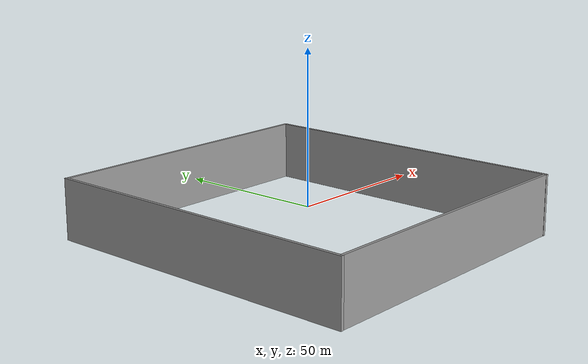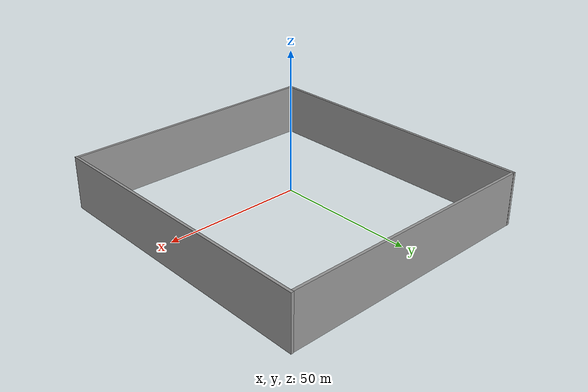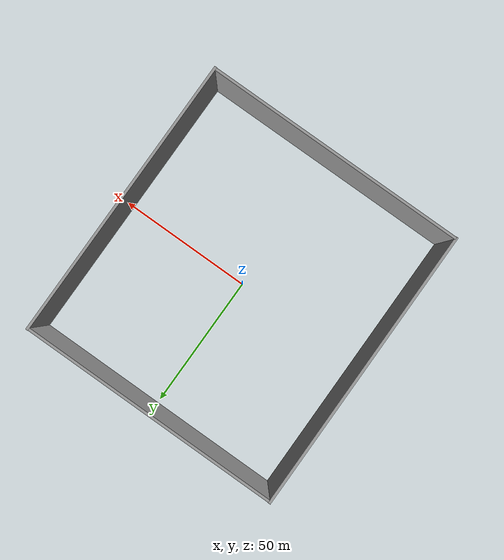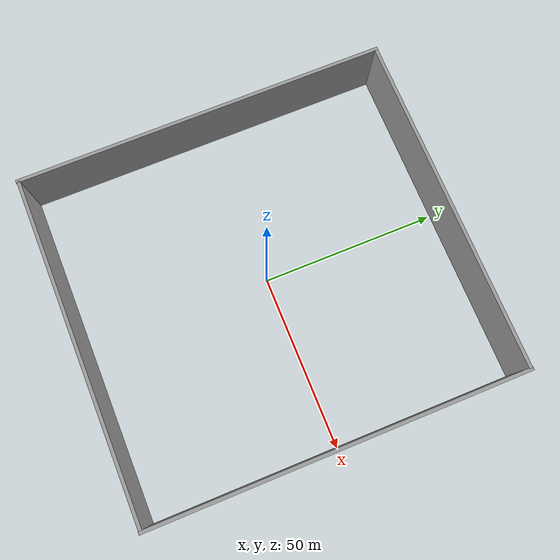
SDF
<?xml version='1.0'?>
<sdf version='1.6'>
  <model name='model'>
    <link name='link_1'>
      <inertial>
        <mass>1</mass>
        <inertia>
          <ixx>0.166667</ixx>
          <ixy>0</ixy>
          <ixz>0</ixz>
          <iyy>0.166667</iyy>
          <iyz>0</iyz>
          <izz>0.166667</izz>
        </inertia>
        <pose frame=''>0 0 0 0 -0 0</pose>
      </inertial>
      <pose frame=''>0.1113 54.3958 0 0 -0 0</pose>
      <gravity>1</gravity>
      <self_collide>0</self_collide>
      <kinematic>0</kinematic>
      <enable_wind>0</enable_wind>
      <visual name='visual'>
        <pose frame=''>0 0 0 0 -0 0</pose>
        <geometry>
          <box>
            <size>100 1 20</size>
          </box>
        </geometry>
        <material>
          <lighting>1</lighting>
          <script>
            <uri>file://media/materials/scripts/gazebo.material</uri>
            <name>Gazebo/Grey</name>
          </script>
          <shader type='vertex'>
            <normal_map>__default__</normal_map>
          </shader>
          <ambient>0.3 0.3 0.3 1</ambient>
          <diffuse>0.7 0.7 0.7 1</diffuse>
          <specular>0.01 0.01 0.01 1</specular>
          <emissive>0 0 0 1</emissive>
        </material>
        <transparency>0</transparency>
        <cast_shadows>1</cast_shadows>
      </visual>
      <collision name='collision'>
        <laser_retro>0</laser_retro>
        <max_contacts>10</max_contacts>
        <pose frame=''>0 0 0 0 -0 0</pose>
        <geometry>
          <box>
            <size>100 1 20</size>
          </box>
        </geometry>
        <surface>
          <friction>
            <ode>
              <mu>1</mu>
              <mu2>1</mu2>
              <fdir1>0 0 0</fdir1>
              <slip1>0</slip1>
              <slip2>0</slip2>
            </ode>
            <torsional>
              <coefficient>1</coefficient>
              <patch_radius>0</patch_radius>
              <surface_radius>0</surface_radius>
              <use_patch_radius>1</use_patch_radius>
              <ode>
                <slip>0</slip>
              </ode>
            </torsional>
          </friction>
          <bounce>
            <restitution_coefficient>0</restitution_coefficient>
            <threshold>1e+06</threshold>
          </bounce>
          <contact>
            <collide_without_contact>0</collide_without_contact>
            <collide_without_contact_bitmask>1</collide_without_contact_bitmask>
            <collide_bitmask>1</collide_bitmask>
            <ode>
              <soft_cfm>0</soft_cfm>
              <soft_erp>0.2</soft_erp>
              <kp>1e+13</kp>
              <kd>1</kd>
              <max_vel>0.01</max_vel>
              <min_depth>0</min_depth>
            </ode>
            <bullet>
              <split_impulse>1</split_impulse>
              <split_impulse_penetration_threshold>-0.01</split_impulse_penetration_threshold>
              <soft_cfm>0</soft_cfm>
              <soft_erp>0.2</soft_erp>
              <kp>1e+13</kp>
              <kd>1</kd>
            </bullet>
          </contact>
        </surface>
      </collision>
    </link>
    <link name='link_1_clone'>
      <inertial>
        <mass>1</mass>
        <inertia>
          <ixx>0.166667</ixx>
          <ixy>0</ixy>
          <ixz>0</ixz>
          <iyy>0.166667</iyy>
          <iyz>0</iyz>
          <izz>0.166667</izz>
        </inertia>
        <pose frame=''>0 0 0 0 -0 0</pose>
      </inertial>
      <pose frame=''>-0.18255 -54.3901 0 0 -0 0</pose>
      <gravity>1</gravity>
      <self_collide>0</self_collide>
      <kinematic>0</kinematic>
      <enable_wind>0</enable_wind>
      <visual name='visual'>
        <pose frame=''>0 0 0 0 -0 0</pose>
        <geometry>
          <box>
            <size>100 1 20</size>
          </box>
        </geometry>
        <material>
          <lighting>1</lighting>
          <script>
            <uri>file://media/materials/scripts/gazebo.material</uri>
            <name>Gazebo/Grey</name>
          </script>
          <shader type='vertex'>
            <normal_map>__default__</normal_map>
          </shader>
          <ambient>0.3 0.3 0.3 1</ambient>
          <diffuse>0.7 0.7 0.7 1</diffuse>
          <specular>0.01 0.01 0.01 1</specular>
          <emissive>0 0 0 1</emissive>
        </material>
        <transparency>0</transparency>
        <cast_shadows>1</cast_shadows>
      </visual>
      <collision name='collision'>
        <laser_retro>0</laser_retro>
        <max_contacts>10</max_contacts>
        <pose frame=''>0 0 0 0 -0 0</pose>
        <geometry>
          <box>
            <size>100 1 20</size>
          </box>
        </geometry>
        <surface>
          <friction>
            <ode>
              <mu>1</mu>
              <mu2>1</mu2>
              <fdir1>0 0 0</fdir1>
              <slip1>0</slip1>
              <slip2>0</slip2>
            </ode>
            <torsional>
              <coefficient>1</coefficient>
              <patch_radius>0</patch_radius>
              <surface_radius>0</surface_radius>
              <use_patch_radius>1</use_patch_radius>
              <ode>
                <slip>0</slip>
              </ode>
            </torsional>
          </friction>
          <bounce>
            <restitution_coefficient>0</restitution_coefficient>
            <threshold>1e+06</threshold>
          </bounce>
          <contact>
            <collide_without_contact>0</collide_without_contact>
            <collide_without_contact_bitmask>1</collide_without_contact_bitmask>
            <collide_bitmask>1</collide_bitmask>
            <ode>
              <soft_cfm>0</soft_cfm>
              <soft_erp>0.2</soft_erp>
              <kp>1e+13</kp>
              <kd>1</kd>
              <max_vel>0.01</max_vel>
              <min_depth>0</min_depth>
            </ode>
            <bullet>
              <split_impulse>1</split_impulse>
              <split_impulse_penetration_threshold>-0.01</split_impulse_penetration_threshold>
              <soft_cfm>0</soft_cfm>
              <soft_erp>0.2</soft_erp>
              <kp>1e+13</kp>
              <kd>1</kd>
            </bullet>
          </contact>
        </surface>
      </collision>
    </link>
    <link name='link_1_clone_0'>
      <inertial>
        <mass>1</mass>
        <inertia>
          <ixx>0.166667</ixx>
          <ixy>0</ixy>
          <ixz>0</ixz>
          <iyy>0.166667</iyy>
          <iyz>0</iyz>
          <izz>0.166667</izz>
        </inertia>
        <pose frame=''>0 0 0 0 -0 0</pose>
      </inertial>
      <pose frame=''>-50.2133 -0.021975 0 0 -0 1.57</pose>
      <gravity>1</gravity>
      <self_collide>0</self_collide>
      <kinematic>0</kinematic>
      <enable_wind>0</enable_wind>
      <visual name='visual'>
        <pose frame=''>0 0 0 0 -0 0</pose>
        <geometry>
          <box>
            <size>110 1 20</size>
          </box>
        </geometry>
        <material>
          <lighting>1</lighting>
          <script>
            <uri>file://media/materials/scripts/gazebo.material</uri>
            <name>Gazebo/Grey</name>
          </script>
          <shader type='vertex'>
            <normal_map>__default__</normal_map>
          </shader>
          <ambient>0.3 0.3 0.3 1</ambient>
          <diffuse>0.7 0.7 0.7 1</diffuse>
          <specular>0.01 0.01 0.01 1</specular>
          <emissive>0 0 0 1</emissive>
        </material>
        <transparency>0</transparency>
        <cast_shadows>1</cast_shadows>
      </visual>
      <collision name='collision'>
        <laser_retro>0</laser_retro>
        <max_contacts>10</max_contacts>
        <pose frame=''>0 0 0 0 -0 0</pose>
        <geometry>
          <box>
            <size>110 1 20</size>
          </box>
        </geometry>
        <surface>
          <friction>
            <ode>
              <mu>1</mu>
              <mu2>1</mu2>
              <fdir1>0 0 0</fdir1>
              <slip1>0</slip1>
              <slip2>0</slip2>
            </ode>
            <torsional>
              <coefficient>1</coefficient>
              <patch_radius>0</patch_radius>
              <surface_radius>0</surface_radius>
              <use_patch_radius>1</use_patch_radius>
              <ode>
                <slip>0</slip>
              </ode>
            </torsional>
          </friction>
          <bounce>
            <restitution_coefficient>0</restitution_coefficient>
            <threshold>1e+06</threshold>
          </bounce>
          <contact>
            <collide_without_contact>0</collide_without_contact>
            <collide_without_contact_bitmask>1</collide_without_contact_bitmask>
            <collide_bitmask>1</collide_bitmask>
            <ode>
              <soft_cfm>0</soft_cfm>
              <soft_erp>0.2</soft_erp>
              <kp>1e+13</kp>
              <kd>1</kd>
              <max_vel>0.01</max_vel>
              <min_depth>0</min_depth>
            </ode>
            <bullet>
              <split_impulse>1</split_impulse>
              <split_impulse_penetration_threshold>-0.01</split_impulse_penetration_threshold>
              <soft_cfm>0</soft_cfm>
              <soft_erp>0.2</soft_erp>
              <kp>1e+13</kp>
              <kd>1</kd>
            </bullet>
          </contact>
        </surface>
      </collision>
    </link>
    <link name='link_1_clone_0_clone'>
      <inertial>
        <mass>1</mass>
        <inertia>
          <ixx>0.166667</ixx>
          <ixy>0</ixy>
          <ixz>0</ixz>
          <iyy>0.166667</iyy>
          <iyz>0</iyz>
          <izz>0.166667</izz>
        </inertia>
        <pose frame=''>0 0 0 0 -0 0</pose>
      </inertial>
      <pose frame=''>50.2845 0.0163 0 0 -0 1.57</pose>
      <gravity>1</gravity>
      <self_collide>0</self_collide>
      <kinematic>0</kinematic>
      <enable_wind>0</enable_wind>
      <visual name='visual'>
        <pose frame=''>0 0 0 0 -0 0</pose>
        <geometry>
          <box>
            <size>110 1 20</size>
          </box>
        </geometry>
        <material>
          <lighting>1</lighting>
          <script>
            <uri>file://media/materials/scripts/gazebo.material</uri>
            <name>Gazebo/Grey</name>
          </script>
          <shader type='vertex'>
            <normal_map>__default__</normal_map>
          </shader>
          <ambient>0.3 0.3 0.3 1</ambient>
          <diffuse>0.7 0.7 0.7 1</diffuse>
          <specular>0.01 0.01 0.01 1</specular>
          <emissive>0 0 0 1</emissive>
        </material>
        <transparency>0</transparency>
        <cast_shadows>1</cast_shadows>
      </visual>
      <collision name='collision'>
        <laser_retro>0</laser_retro>
        <max_contacts>10</max_contacts>
        <pose frame=''>0 0 0 0 -0 0</pose>
        <geometry>
          <box>
            <size>110 1 20</size>
          </box>
        </geometry>
        <surface>
          <friction>
            <ode>
              <mu>1</mu>
              <mu2>1</mu2>
              <fdir1>0 0 0</fdir1>
              <slip1>0</slip1>
              <slip2>0</slip2>
            </ode>
            <torsional>
              <coefficient>1</coefficient>
              <patch_radius>0</patch_radius>
              <surface_radius>0</surface_radius>
              <use_patch_radius>1</use_patch_radius>
              <ode>
                <slip>0</slip>
              </ode>
            </torsional>
          </friction>
          <bounce>
            <restitution_coefficient>0</restitution_coefficient>
            <threshold>1e+06</threshold>
          </bounce>
          <contact>
            <collide_without_contact>0</collide_without_contact>
            <collide_without_contact_bitmask>1</collide_without_contact_bitmask>
            <collide_bitmask>1</collide_bitmask>
            <ode>
              <soft_cfm>0</soft_cfm>
              <soft_erp>0.2</soft_erp>
              <kp>1e+13</kp>
              <kd>1</kd>
              <max_vel>0.01</max_vel>
              <min_depth>0</min_depth>
            </ode>
            <bullet>
              <split_impulse>1</split_impulse>
              <split_impulse_penetration_threshold>-0.01</split_impulse_penetration_threshold>
              <soft_cfm>0</soft_cfm>
              <soft_erp>0.2</soft_erp>
              <kp>1e+13</kp>
              <kd>1</kd>
            </bullet>
          </contact>
        </surface>
      </collision>
    </link>
    <static>0</static>
    <allow_auto_disable>1</allow_auto_disable>
  </model>
</sdf>
